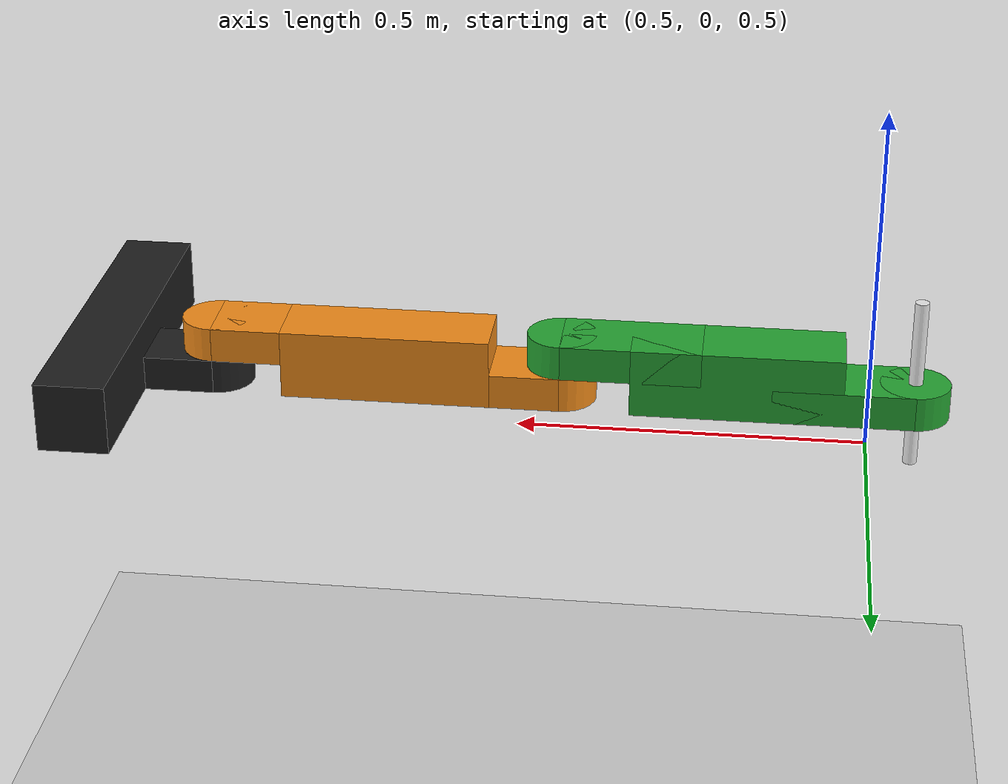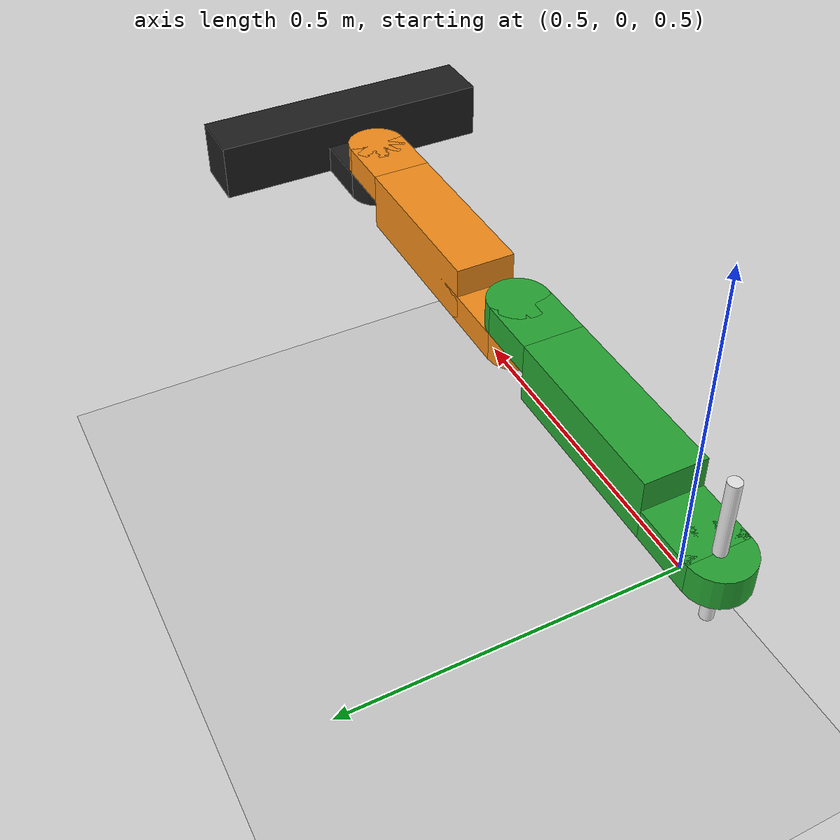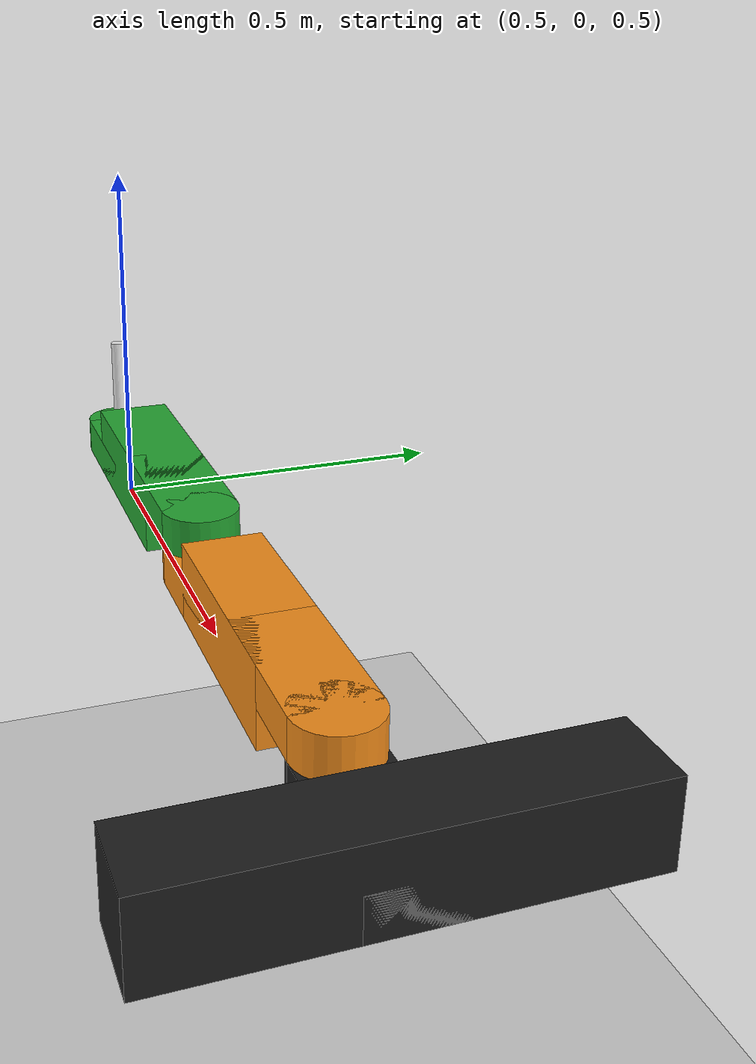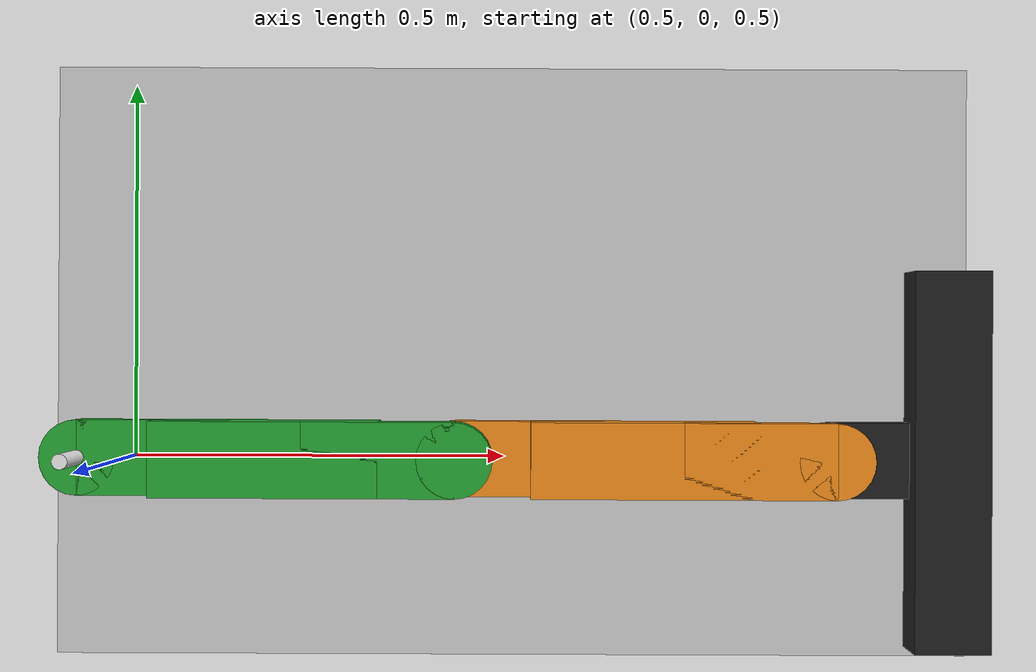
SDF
<sdf version="1.5">
 <world name="default">
  <light name="sun" type="directional">
   <pose>0 0 10 0 -0 0</pose>
   <diffuse>0.8 0.8 0.8 1</diffuse>
   <specular>0.2 0.2 0.2 1</specular>
   <attenuation>
    <range>1000</range>
    <constant>0.9</constant>
    <linear>0.01</linear>
    <quadratic>0.001</quadratic>
   </attenuation>
   <direction>-0.5 0.1 -0.9</direction>
  </light>
  <model name="ground_plane">
   <static>1</static>
   <link name="link">
    <collision name="collision">
     <geometry><plane><normal>0 0 1</normal><size>100 100</size></plane></geometry>
     <surface><friction><ode><mu>100</mu><mu2>50</mu2></ode></friction></surface>
    </collision>
    <visual name="visual">
     <cast_shadows>0</cast_shadows>
     <geometry><plane><normal>0 0 1</normal><size>100 100</size></plane></geometry>
     <material>
      <script><uri>file://media/materials/scripts/gazebo.material</uri><name>Gazebo/Grey</name></script>
     </material>
    </visual>
   </link>
  </model>
  <physics name="default_physics" default="0" type="ode">
   <max_step_size>0.001</max_step_size>
   <real_time_factor>1</real_time_factor>
   <real_time_update_rate>1000</real_time_update_rate>
   <gravity>0 0 -9.8</gravity>
   <magnetic_field>6e-06 2.3e-05 -4.2e-05</magnetic_field>
  </physics>
  <scene><ambient>0.4 0.4 0.4 1</ambient><background>0.7 0.7 0.7 1</background><shadows>1</shadows></scene>
  <spherical_coordinates>
   <surface_model>EARTH_WGS84</surface_model>
   <latitude_deg>0</latitude_deg>
   <longitude_deg>0</longitude_deg>
   <elevation>0</elevation>
   <heading_deg>0</heading_deg>
  </spherical_coordinates>
  <model name="manipulator2r">
   <link name="base_link">
    <pose>0 0 0.6 0 -0 1.57</pose>
    <inertial>
     <pose>-0.1 0.05 0 0 -0 0</pose>
     <mass>1</mass>
     <inertia><ixx>1</ixx><ixy>0</ixy><ixz>0</ixz><iyy>1</iyy><iyz>0</iyz><izz>1</izz></inertia>
    </inertial>
    <collision name="base_link_collision"><geometry><box><size>0.5 0.1 0.1</size></box></geometry></collision>
    <collision name="base_link_collision_1">
     <pose>0 0.05 -0.025 0 -0 0</pose>
     <geometry><box><size>0.1 0.2 0.05</size></box></geometry>
    </collision>
    <collision name="base_link_collision_2">
     <pose>0 0.15 -0.025 0 -0 0</pose>
     <geometry><cylinder><length>0.05</length><radius>0.05</radius></cylinder></geometry>
    </collision>
    <visual name="base_link_visual">
     <geometry><box><size>0.5 0.1 0.1</size></box></geometry>
     <material>
      <script><name>Gazebo/Black</name><uri>file://media/materials/scripts/gazebo.material</uri></script>
     </material>
    </visual>
    <visual name="base_link_visual_1">
     <pose>0 0.05 -0.025 0 -0 0</pose>
     <geometry><box><size>0.1 0.2 0.05</size></box></geometry>
     <material>
      <script><name>Gazebo/Black</name><uri>file://media/materials/scripts/gazebo.material</uri></script>
     </material>
    </visual>
    <visual name="base_link_visual_2">
     <pose>0 0.15 -0.025 0 -0 0</pose>
     <geometry><cylinder><length>0.05</length><radius>0.05</radius></cylinder></geometry>
     <material>
      <script><name>Gazebo/Black</name><uri>file://media/materials/scripts/gazebo.material</uri></script>
     </material>
    </visual>
   </link>
   <joint name="anchor" type="fixed">
    <child>base_link</child>
    <parent>world</parent>
    <axis>
     <limit><lower>0</lower><upper>0</upper></limit>
     <dynamics>
      <damping>0</damping>
      <friction>0</friction>
      <spring_reference>0</spring_reference>
      <spring_stiffness>0</spring_stiffness>
     </dynamics>
     <use_parent_model_frame>1</use_parent_model_frame>
     <xyz>0 0 1</xyz>
    </axis>
   </joint>
   <link name="first_link">
    <pose>-0.15 0 0.6 0 -0 1.57</pose>
    <inertial>
     <pose>0 0.25 0 0 -0 0</pose>
     <mass>1</mass>
     <inertia><ixx>1</ixx><ixy>0</ixy><ixz>0</ixz><iyy>1</iyy><iyz>0</iyz><izz>1</izz></inertia>
    </inertial>
    <collision name="first_link_collision">
     <pose>0 0 0.025 0 -0 0</pose>
     <geometry><cylinder><length>0.05</length><radius>0.05</radius></cylinder></geometry>
    </collision>
    <collision name="first_link_collision_1">
     <pose>0 0.1 0.025 0 -0 0</pose>
     <geometry><box><size>0.1 0.2 0.05</size></box></geometry>
    </collision>
    <collision name="first_link_collision_2">
     <pose>0 0.25 0 0 -0 0</pose>
     <geometry><box><size>0.1 0.3 0.1</size></box></geometry>
    </collision>
    <collision name="first_link_collision_3">
     <pose>0 0.4 -0.025 0 -0 0</pose>
     <geometry><box><size>0.1 0.2 0.05</size></box></geometry>
    </collision>
    <collision name="first_link_collision_4">
     <pose>0 0.5 -0.025 0 -0 0</pose>
     <geometry><cylinder><length>0.05</length><radius>0.05</radius></cylinder></geometry>
    </collision>
    <visual name="first_link_visual">
     <pose>0 0 0.025 0 -0 0</pose>
     <geometry><cylinder><length>0.05</length><radius>0.05</radius></cylinder></geometry>
     <material>
      <script><name>Gazebo/Orange</name><uri>file://media/materials/scripts/gazebo.material</uri></script>
     </material>
    </visual>
    <visual name="first_link_visual_1">
     <pose>0 0.1 0.025 0 -0 0</pose>
     <geometry><box><size>0.1 0.2 0.05</size></box></geometry>
     <material>
      <script><name>Gazebo/Orange</name><uri>file://media/materials/scripts/gazebo.material</uri></script>
     </material>
    </visual>
    <visual name="first_link_visual_2">
     <pose>0 0.25 0 0 -0 0</pose>
     <geometry><box><size>0.1 0.3 0.1</size></box></geometry>
     <material>
      <script><name>Gazebo/Orange</name><uri>file://media/materials/scripts/gazebo.material</uri></script>
     </material>
    </visual>
    <visual name="first_link_visual_3">
     <pose>0 0.4 -0.025 0 -0 0</pose>
     <geometry><box><size>0.1 0.2 0.05</size></box></geometry>
     <material>
      <script><name>Gazebo/Orange</name><uri>file://media/materials/scripts/gazebo.material</uri></script>
     </material>
    </visual>
    <visual name="first_link_visual_4">
     <pose>0 0.5 -0.025 0 -0 0</pose>
     <geometry><cylinder><length>0.05</length><radius>0.05</radius></cylinder></geometry>
     <material>
      <script><name>Gazebo/Orange</name><uri>file://media/materials/scripts/gazebo.material</uri></script>
     </material>
    </visual>
   </link>
   <joint name="joint1" type="revolute">
    <child>first_link</child>
    <parent>base_link</parent>
    <axis>
     <xyz>0 0 1</xyz>
     <limit><lower>-1.57</lower><upper>1.57</upper><effort>30</effort><velocity>1</velocity></limit>
     <dynamics><spring_reference>0</spring_reference><spring_stiffness>0</spring_stiffness></dynamics>
     <use_parent_model_frame>1</use_parent_model_frame>
    </axis>
   </joint>
   <link name="second_link">
    <pose>-0.65 0 0.6 0 -0 1.57</pose>
    <inertial>
     <pose>0 0.27 0 0 -0 0</pose>
     <mass>2</mass>
     <inertia><ixx>2.06125</ixx><ixy>0</ixy><ixz>0</ixz><iyy>2</iyy><iyz>0</iyz><izz>2.06125</izz></inertia>
    </inertial>
    <collision name="second_link_collision">
     <pose>0 0 0.025 0 -0 0</pose>
     <geometry><cylinder><length>0.05</length><radius>0.05</radius></cylinder></geometry>
    </collision>
    <collision name="second_link_collision_1">
     <pose>0 0.1 0.025 0 -0 0</pose>
     <geometry><box><size>0.1 0.2 0.05</size></box></geometry>
    </collision>
    <collision name="second_link_collision_2">
     <pose>0 0.25 0 0 -0 0</pose>
     <geometry><box><size>0.1 0.3 0.1</size></box></geometry>
    </collision>
    <collision name="second_link_collision_3">
     <pose>0 0.4 -0.025 0 -0 0</pose>
     <geometry><box><size>0.1 0.2 0.05</size></box></geometry>
    </collision>
    <collision name="second_link_collision_4">
     <pose>0 0.5 -0.025 0 -0 0</pose>
     <geometry><cylinder><length>0.05</length><radius>0.05</radius></cylinder></geometry>
    </collision>
    <collision name="second_link_lump::handle_link_collision_5">
     <pose>0 0.5 0 0 -0 0</pose>
     <geometry><cylinder><length>0.25</length><radius>0.01</radius></cylinder></geometry>
    </collision>
    <visual name="second_link_visual">
     <pose>0 0 0.025 0 -0 0</pose>
     <geometry><cylinder><length>0.05</length><radius>0.05</radius></cylinder></geometry>
     <material>
      <script><name>Gazebo/Green</name><uri>file://media/materials/scripts/gazebo.material</uri></script>
     </material>
    </visual>
    <visual name="second_link_visual_1">
     <pose>0 0.1 0.025 0 -0 0</pose>
     <geometry><box><size>0.1 0.2 0.05</size></box></geometry>
     <material>
      <script><name>Gazebo/Green</name><uri>file://media/materials/scripts/gazebo.material</uri></script>
     </material>
    </visual>
    <visual name="second_link_visual_2">
     <pose>0 0.25 0 0 -0 0</pose>
     <geometry><box><size>0.1 0.3 0.1</size></box></geometry>
     <material>
      <script><name>Gazebo/Green</name><uri>file://media/materials/scripts/gazebo.material</uri></script>
     </material>
    </visual>
    <visual name="second_link_visual_3">
     <pose>0 0.4 -0.025 0 -0 0</pose>
     <geometry><box><size>0.1 0.2 0.05</size></box></geometry>
     <material>
      <script><name>Gazebo/Green</name><uri>file://media/materials/scripts/gazebo.material</uri></script>
     </material>
    </visual>
    <visual name="second_link_visual_4">
     <pose>0 0.5 -0.025 0 -0 0</pose>
     <geometry><cylinder><length>0.05</length><radius>0.05</radius></cylinder></geometry>
     <material>
      <script><name>Gazebo/Green</name><uri>file://media/materials/scripts/gazebo.material</uri></script>
     </material>
    </visual>
    <visual name="second_link_lump::handle_link_visual_5">
     <pose>0 0.5 0 0 -0 0</pose>
     <geometry><cylinder><length>0.25</length><radius>0.01</radius></cylinder></geometry>
     <material>
      <script><name>Gazebo/White</name><uri>file://media/materials/scripts/gazebo.material</uri></script>
     </material>
    </visual>
   </link>
   <joint name="joint2" type="revolute">
    <child>second_link</child>
    <parent>first_link</parent>
    <axis>
     <xyz>0 0 1</xyz>
     <limit><lower>-1.57</lower><upper>1.57</upper><effort>30</effort><velocity>1</velocity></limit>
     <dynamics><spring_reference>0</spring_reference><spring_stiffness>0</spring_stiffness></dynamics>
     <use_parent_model_frame>1</use_parent_model_frame>
    </axis>
   </joint>
   <plugin name="controlboard" filename="libgazebo_yarp_controlboard.so">
    <yarpConfigurationFile>model://manipulator2r/conf/gazebo_controlboard.ini</yarpConfigurationFile>
    <initialConfiguration>0.0 0.0</initialConfiguration>
   </plugin>
   <pose>1.58536 0 0 0 -0 0</pose>
  </model>
 </world>
</sdf>
